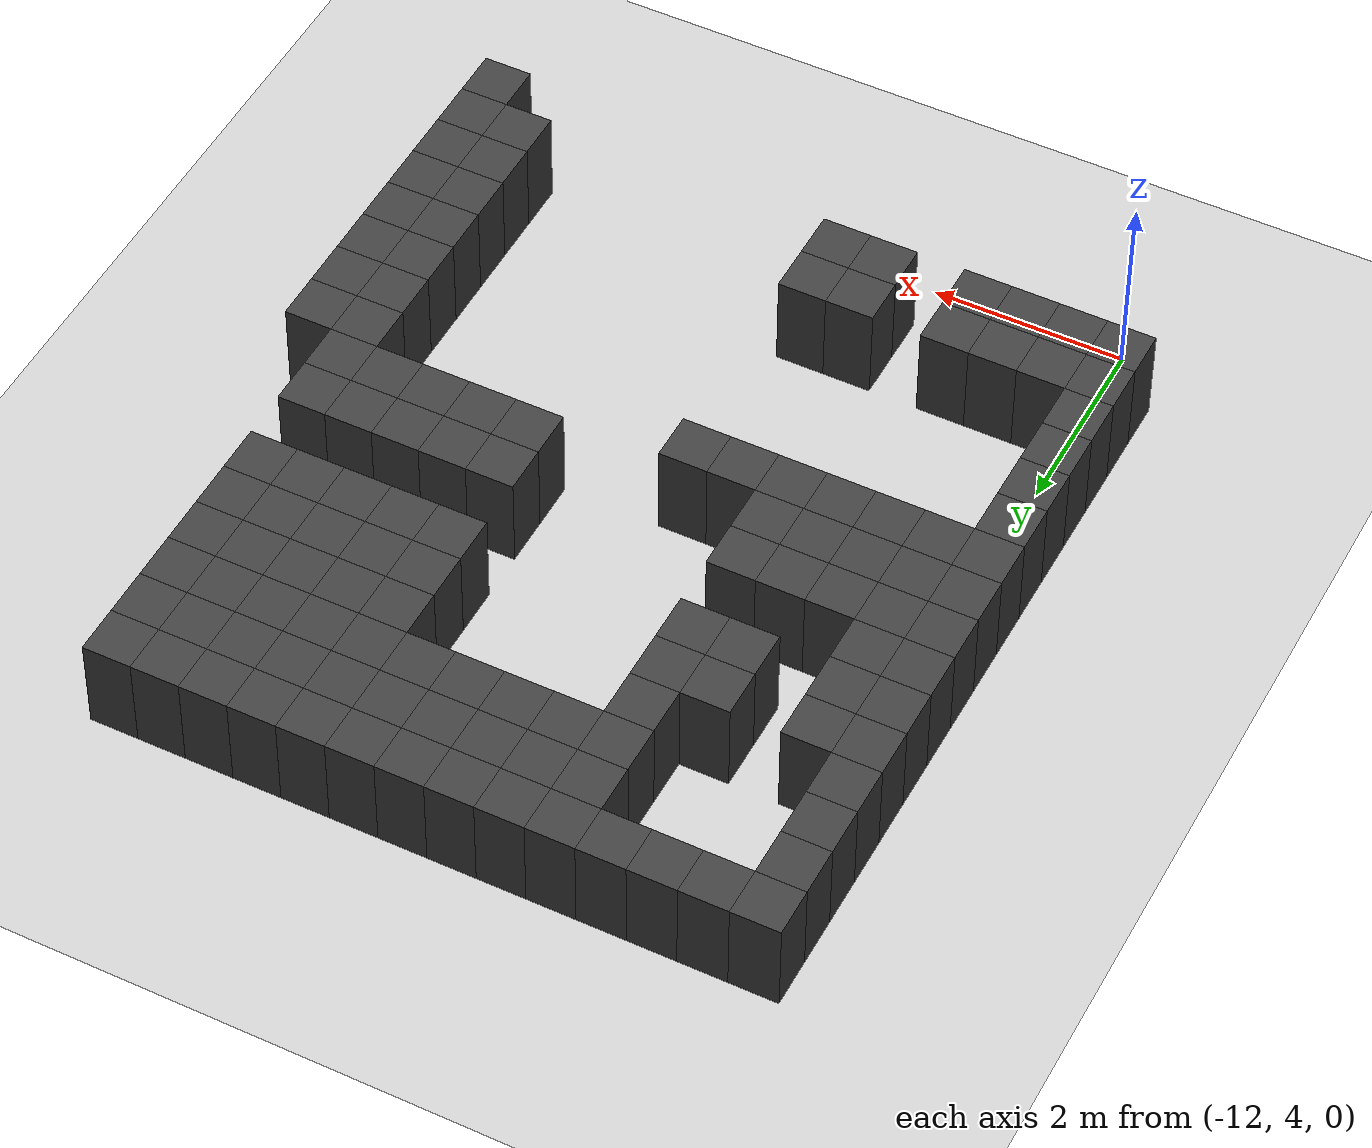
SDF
<sdf version="1.7">
 <world name="map_14510">
  <model name="ground_plane">
   <static>true</static>
   <link name="link">
    <collision name="collision">
     <geometry><plane><normal>0 0 1</normal><size>200 200</size></plane></geometry>
    </collision>
    <visual name="visual">
     <geometry><plane><normal>0 0 1</normal><size>200 200</size></plane></geometry>
     <material><ambient>0.8 0.8 0.8 1</ambient><diffuse>0.8 0.8 0.8 1</diffuse></material>
    </visual>
   </link>
  </model>
  <model name="maze_environment">
   <static>true</static>
   <link name="wall_0">
    <pose>-12.250 12.250 0.500 0 0 0</pose>
    <collision name="col"><geometry><box><size>0.5 0.5 1.0</size></box></geometry></collision>
    <visual name="vis">
     <geometry><box><size>0.5 0.5 1.0</size></box></geometry>
     <material><ambient>0.15 0.15 0.15 1</ambient><diffuse>0.25 0.25 0.25 1</diffuse></material>
    </visual>
   </link>
   <link name="wall_1">
    <pose>-11.750 12.250 0.500 0 0 0</pose>
    <collision name="col"><geometry><box><size>0.5 0.5 1.0</size></box></geometry></collision>
    <visual name="vis">
     <geometry><box><size>0.5 0.5 1.0</size></box></geometry>
     <material><ambient>0.15 0.15 0.15 1</ambient><diffuse>0.25 0.25 0.25 1</diffuse></material>
    </visual>
   </link>
   <link name="wall_2">
    <pose>-11.250 12.250 0.500 0 0 0</pose>
    <collision name="col"><geometry><box><size>0.5 0.5 1.0</size></box></geometry></collision>
    <visual name="vis">
     <geometry><box><size>0.5 0.5 1.0</size></box></geometry>
     <material><ambient>0.15 0.15 0.15 1</ambient><diffuse>0.25 0.25 0.25 1</diffuse></material>
    </visual>
   </link>
   <link name="wall_3">
    <pose>-10.750 12.250 0.500 0 0 0</pose>
    <collision name="col"><geometry><box><size>0.5 0.5 1.0</size></box></geometry></collision>
    <visual name="vis">
     <geometry><box><size>0.5 0.5 1.0</size></box></geometry>
     <material><ambient>0.15 0.15 0.15 1</ambient><diffuse>0.25 0.25 0.25 1</diffuse></material>
    </visual>
   </link>
   <link name="wall_4">
    <pose>-10.250 12.250 0.500 0 0 0</pose>
    <collision name="col"><geometry><box><size>0.5 0.5 1.0</size></box></geometry></collision>
    <visual name="vis">
     <geometry><box><size>0.5 0.5 1.0</size></box></geometry>
     <material><ambient>0.15 0.15 0.15 1</ambient><diffuse>0.25 0.25 0.25 1</diffuse></material>
    </visual>
   </link>
   <link name="wall_5">
    <pose>-9.750 12.250 0.500 0 0 0</pose>
    <collision name="col"><geometry><box><size>0.5 0.5 1.0</size></box></geometry></collision>
    <visual name="vis">
     <geometry><box><size>0.5 0.5 1.0</size></box></geometry>
     <material><ambient>0.15 0.15 0.15 1</ambient><diffuse>0.25 0.25 0.25 1</diffuse></material>
    </visual>
   </link>
   <link name="wall_6">
    <pose>-9.250 12.250 0.500 0 0 0</pose>
    <collision name="col"><geometry><box><size>0.5 0.5 1.0</size></box></geometry></collision>
    <visual name="vis">
     <geometry><box><size>0.5 0.5 1.0</size></box></geometry>
     <material><ambient>0.15 0.15 0.15 1</ambient><diffuse>0.25 0.25 0.25 1</diffuse></material>
    </visual>
   </link>
   <link name="wall_7">
    <pose>-8.750 12.250 0.500 0 0 0</pose>
    <collision name="col"><geometry><box><size>0.5 0.5 1.0</size></box></geometry></collision>
    <visual name="vis">
     <geometry><box><size>0.5 0.5 1.0</size></box></geometry>
     <material><ambient>0.15 0.15 0.15 1</ambient><diffuse>0.25 0.25 0.25 1</diffuse></material>
    </visual>
   </link>
   <link name="wall_8">
    <pose>-8.250 12.250 0.500 0 0 0</pose>
    <collision name="col"><geometry><box><size>0.5 0.5 1.0</size></box></geometry></collision>
    <visual name="vis">
     <geometry><box><size>0.5 0.5 1.0</size></box></geometry>
     <material><ambient>0.15 0.15 0.15 1</ambient><diffuse>0.25 0.25 0.25 1</diffuse></material>
    </visual>
   </link>
   <link name="wall_9">
    <pose>-7.750 12.250 0.500 0 0 0</pose>
    <collision name="col"><geometry><box><size>0.5 0.5 1.0</size></box></geometry></collision>
    <visual name="vis">
     <geometry><box><size>0.5 0.5 1.0</size></box></geometry>
     <material><ambient>0.15 0.15 0.15 1</ambient><diffuse>0.25 0.25 0.25 1</diffuse></material>
    </visual>
   </link>
   <link name="wall_10">
    <pose>-7.250 12.250 0.500 0 0 0</pose>
    <collision name="col"><geometry><box><size>0.5 0.5 1.0</size></box></geometry></collision>
    <visual name="vis">
     <geometry><box><size>0.5 0.5 1.0</size></box></geometry>
     <material><ambient>0.15 0.15 0.15 1</ambient><diffuse>0.25 0.25 0.25 1</diffuse></material>
    </visual>
   </link>
   <link name="wall_11">
    <pose>-6.750 12.250 0.500 0 0 0</pose>
    <collision name="col"><geometry><box><size>0.5 0.5 1.0</size></box></geometry></collision>
    <visual name="vis">
     <geometry><box><size>0.5 0.5 1.0</size></box></geometry>
     <material><ambient>0.15 0.15 0.15 1</ambient><diffuse>0.25 0.25 0.25 1</diffuse></material>
    </visual>
   </link>
   <link name="wall_12">
    <pose>-6.250 12.250 0.500 0 0 0</pose>
    <collision name="col"><geometry><box><size>0.5 0.5 1.0</size></box></geometry></collision>
    <visual name="vis">
     <geometry><box><size>0.5 0.5 1.0</size></box></geometry>
     <material><ambient>0.15 0.15 0.15 1</ambient><diffuse>0.25 0.25 0.25 1</diffuse></material>
    </visual>
   </link>
   <link name="wall_13">
    <pose>-5.750 12.250 0.500 0 0 0</pose>
    <collision name="col"><geometry><box><size>0.5 0.5 1.0</size></box></geometry></collision>
    <visual name="vis">
     <geometry><box><size>0.5 0.5 1.0</size></box></geometry>
     <material><ambient>0.15 0.15 0.15 1</ambient><diffuse>0.25 0.25 0.25 1</diffuse></material>
    </visual>
   </link>
   <link name="wall_50">
    <pose>-12.250 11.750 0.500 0 0 0</pose>
    <collision name="col"><geometry><box><size>0.5 0.5 1.0</size></box></geometry></collision>
    <visual name="vis">
     <geometry><box><size>0.5 0.5 1.0</size></box></geometry>
     <material><ambient>0.15 0.15 0.15 1</ambient><diffuse>0.25 0.25 0.25 1</diffuse></material>
    </visual>
   </link>
   <link name="wall_51">
    <pose>-10.250 11.750 0.500 0 0 0</pose>
    <collision name="col"><geometry><box><size>0.5 0.5 1.0</size></box></geometry></collision>
    <visual name="vis">
     <geometry><box><size>0.5 0.5 1.0</size></box></geometry>
     <material><ambient>0.15 0.15 0.15 1</ambient><diffuse>0.25 0.25 0.25 1</diffuse></material>
    </visual>
   </link>
   <link name="wall_52">
    <pose>-9.750 11.750 0.500 0 0 0</pose>
    <collision name="col"><geometry><box><size>0.5 0.5 1.0</size></box></geometry></collision>
    <visual name="vis">
     <geometry><box><size>0.5 0.5 1.0</size></box></geometry>
     <material><ambient>0.15 0.15 0.15 1</ambient><diffuse>0.25 0.25 0.25 1</diffuse></material>
    </visual>
   </link>
   <link name="wall_53">
    <pose>-9.250 11.750 0.500 0 0 0</pose>
    <collision name="col"><geometry><box><size>0.5 0.5 1.0</size></box></geometry></collision>
    <visual name="vis">
     <geometry><box><size>0.5 0.5 1.0</size></box></geometry>
     <material><ambient>0.15 0.15 0.15 1</ambient><diffuse>0.25 0.25 0.25 1</diffuse></material>
    </visual>
   </link>
   <link name="wall_54">
    <pose>-8.750 11.750 0.500 0 0 0</pose>
    <collision name="col"><geometry><box><size>0.5 0.5 1.0</size></box></geometry></collision>
    <visual name="vis">
     <geometry><box><size>0.5 0.5 1.0</size></box></geometry>
     <material><ambient>0.15 0.15 0.15 1</ambient><diffuse>0.25 0.25 0.25 1</diffuse></material>
    </visual>
   </link>
   <link name="wall_55">
    <pose>-8.250 11.750 0.500 0 0 0</pose>
    <collision name="col"><geometry><box><size>0.5 0.5 1.0</size></box></geometry></collision>
    <visual name="vis">
     <geometry><box><size>0.5 0.5 1.0</size></box></geometry>
     <material><ambient>0.15 0.15 0.15 1</ambient><diffuse>0.25 0.25 0.25 1</diffuse></material>
    </visual>
   </link>
   <link name="wall_56">
    <pose>-7.750 11.750 0.500 0 0 0</pose>
    <collision name="col"><geometry><box><size>0.5 0.5 1.0</size></box></geometry></collision>
    <visual name="vis">
     <geometry><box><size>0.5 0.5 1.0</size></box></geometry>
     <material><ambient>0.15 0.15 0.15 1</ambient><diffuse>0.25 0.25 0.25 1</diffuse></material>
    </visual>
   </link>
   <link name="wall_57">
    <pose>-7.250 11.750 0.500 0 0 0</pose>
    <collision name="col"><geometry><box><size>0.5 0.5 1.0</size></box></geometry></collision>
    <visual name="vis">
     <geometry><box><size>0.5 0.5 1.0</size></box></geometry>
     <material><ambient>0.15 0.15 0.15 1</ambient><diffuse>0.25 0.25 0.25 1</diffuse></material>
    </visual>
   </link>
   <link name="wall_58">
    <pose>-6.750 11.750 0.500 0 0 0</pose>
    <collision name="col"><geometry><box><size>0.5 0.5 1.0</size></box></geometry></collision>
    <visual name="vis">
     <geometry><box><size>0.5 0.5 1.0</size></box></geometry>
     <material><ambient>0.15 0.15 0.15 1</ambient><diffuse>0.25 0.25 0.25 1</diffuse></material>
    </visual>
   </link>
   <link name="wall_59">
    <pose>-6.250 11.750 0.500 0 0 0</pose>
    <collision name="col"><geometry><box><size>0.5 0.5 1.0</size></box></geometry></collision>
    <visual name="vis">
     <geometry><box><size>0.5 0.5 1.0</size></box></geometry>
     <material><ambient>0.15 0.15 0.15 1</ambient><diffuse>0.25 0.25 0.25 1</diffuse></material>
    </visual>
   </link>
   <link name="wall_60">
    <pose>-5.750 11.750 0.500 0 0 0</pose>
    <collision name="col"><geometry><box><size>0.5 0.5 1.0</size></box></geometry></collision>
    <visual name="vis">
     <geometry><box><size>0.5 0.5 1.0</size></box></geometry>
     <material><ambient>0.15 0.15 0.15 1</ambient><diffuse>0.25 0.25 0.25 1</diffuse></material>
    </visual>
   </link>
   <link name="wall_97">
    <pose>-12.250 11.250 0.500 0 0 0</pose>
    <collision name="col"><geometry><box><size>0.5 0.5 1.0</size></box></geometry></collision>
    <visual name="vis">
     <geometry><box><size>0.5 0.5 1.0</size></box></geometry>
     <material><ambient>0.15 0.15 0.15 1</ambient><diffuse>0.25 0.25 0.25 1</diffuse></material>
    </visual>
   </link>
   <link name="wall_98">
    <pose>-10.250 11.250 0.500 0 0 0</pose>
    <collision name="col"><geometry><box><size>0.5 0.5 1.0</size></box></geometry></collision>
    <visual name="vis">
     <geometry><box><size>0.5 0.5 1.0</size></box></geometry>
     <material><ambient>0.15 0.15 0.15 1</ambient><diffuse>0.25 0.25 0.25 1</diffuse></material>
    </visual>
   </link>
   <link name="wall_99">
    <pose>-9.750 11.250 0.500 0 0 0</pose>
    <collision name="col"><geometry><box><size>0.5 0.5 1.0</size></box></geometry></collision>
    <visual name="vis">
     <geometry><box><size>0.5 0.5 1.0</size></box></geometry>
     <material><ambient>0.15 0.15 0.15 1</ambient><diffuse>0.25 0.25 0.25 1</diffuse></material>
    </visual>
   </link>
   <link name="wall_100">
    <pose>-9.250 11.250 0.500 0 0 0</pose>
    <collision name="col"><geometry><box><size>0.5 0.5 1.0</size></box></geometry></collision>
    <visual name="vis">
     <geometry><box><size>0.5 0.5 1.0</size></box></geometry>
     <material><ambient>0.15 0.15 0.15 1</ambient><diffuse>0.25 0.25 0.25 1</diffuse></material>
    </visual>
   </link>
   <link name="wall_101">
    <pose>-8.750 11.250 0.500 0 0 0</pose>
    <collision name="col"><geometry><box><size>0.5 0.5 1.0</size></box></geometry></collision>
    <visual name="vis">
     <geometry><box><size>0.5 0.5 1.0</size></box></geometry>
     <material><ambient>0.15 0.15 0.15 1</ambient><diffuse>0.25 0.25 0.25 1</diffuse></material>
    </visual>
   </link>
   <link name="wall_102">
    <pose>-8.250 11.250 0.500 0 0 0</pose>
    <collision name="col"><geometry><box><size>0.5 0.5 1.0</size></box></geometry></collision>
    <visual name="vis">
     <geometry><box><size>0.5 0.5 1.0</size></box></geometry>
     <material><ambient>0.15 0.15 0.15 1</ambient><diffuse>0.25 0.25 0.25 1</diffuse></material>
    </visual>
   </link>
   <link name="wall_103">
    <pose>-7.750 11.250 0.500 0 0 0</pose>
    <collision name="col"><geometry><box><size>0.5 0.5 1.0</size></box></geometry></collision>
    <visual name="vis">
     <geometry><box><size>0.5 0.5 1.0</size></box></geometry>
     <material><ambient>0.15 0.15 0.15 1</ambient><diffuse>0.25 0.25 0.25 1</diffuse></material>
    </visual>
   </link>
   <link name="wall_104">
    <pose>-7.250 11.250 0.500 0 0 0</pose>
    <collision name="col"><geometry><box><size>0.5 0.5 1.0</size></box></geometry></collision>
    <visual name="vis">
     <geometry><box><size>0.5 0.5 1.0</size></box></geometry>
     <material><ambient>0.15 0.15 0.15 1</ambient><diffuse>0.25 0.25 0.25 1</diffuse></material>
    </visual>
   </link>
   <link name="wall_105">
    <pose>-6.750 11.250 0.500 0 0 0</pose>
    <collision name="col"><geometry><box><size>0.5 0.5 1.0</size></box></geometry></collision>
    <visual name="vis">
     <geometry><box><size>0.5 0.5 1.0</size></box></geometry>
     <material><ambient>0.15 0.15 0.15 1</ambient><diffuse>0.25 0.25 0.25 1</diffuse></material>
    </visual>
   </link>
   <link name="wall_106">
    <pose>-6.250 11.250 0.500 0 0 0</pose>
    <collision name="col"><geometry><box><size>0.5 0.5 1.0</size></box></geometry></collision>
    <visual name="vis">
     <geometry><box><size>0.5 0.5 1.0</size></box></geometry>
     <material><ambient>0.15 0.15 0.15 1</ambient><diffuse>0.25 0.25 0.25 1</diffuse></material>
    </visual>
   </link>
   <link name="wall_107">
    <pose>-5.750 11.250 0.500 0 0 0</pose>
    <collision name="col"><geometry><box><size>0.5 0.5 1.0</size></box></geometry></collision>
    <visual name="vis">
     <geometry><box><size>0.5 0.5 1.0</size></box></geometry>
     <material><ambient>0.15 0.15 0.15 1</ambient><diffuse>0.25 0.25 0.25 1</diffuse></material>
    </visual>
   </link>
   <link name="wall_144">
    <pose>-12.250 10.750 0.500 0 0 0</pose>
    <collision name="col"><geometry><box><size>0.5 0.5 1.0</size></box></geometry></collision>
    <visual name="vis">
     <geometry><box><size>0.5 0.5 1.0</size></box></geometry>
     <material><ambient>0.15 0.15 0.15 1</ambient><diffuse>0.25 0.25 0.25 1</diffuse></material>
    </visual>
   </link>
   <link name="wall_145">
    <pose>-10.250 10.750 0.500 0 0 0</pose>
    <collision name="col"><geometry><box><size>0.5 0.5 1.0</size></box></geometry></collision>
    <visual name="vis">
     <geometry><box><size>0.5 0.5 1.0</size></box></geometry>
     <material><ambient>0.15 0.15 0.15 1</ambient><diffuse>0.25 0.25 0.25 1</diffuse></material>
    </visual>
   </link>
   <link name="wall_146">
    <pose>-7.750 10.750 0.500 0 0 0</pose>
    <collision name="col"><geometry><box><size>0.5 0.5 1.0</size></box></geometry></collision>
    <visual name="vis">
     <geometry><box><size>0.5 0.5 1.0</size></box></geometry>
     <material><ambient>0.15 0.15 0.15 1</ambient><diffuse>0.25 0.25 0.25 1</diffuse></material>
    </visual>
   </link>
   <link name="wall_147">
    <pose>-7.250 10.750 0.500 0 0 0</pose>
    <collision name="col"><geometry><box><size>0.5 0.5 1.0</size></box></geometry></collision>
    <visual name="vis">
     <geometry><box><size>0.5 0.5 1.0</size></box></geometry>
     <material><ambient>0.15 0.15 0.15 1</ambient><diffuse>0.25 0.25 0.25 1</diffuse></material>
    </visual>
   </link>
   <link name="wall_148">
    <pose>-6.750 10.750 0.500 0 0 0</pose>
    <collision name="col"><geometry><box><size>0.5 0.5 1.0</size></box></geometry></collision>
    <visual name="vis">
     <geometry><box><size>0.5 0.5 1.0</size></box></geometry>
     <material><ambient>0.15 0.15 0.15 1</ambient><diffuse>0.25 0.25 0.25 1</diffuse></material>
    </visual>
   </link>
   <link name="wall_149">
    <pose>-6.250 10.750 0.500 0 0 0</pose>
    <collision name="col"><geometry><box><size>0.5 0.5 1.0</size></box></geometry></collision>
    <visual name="vis">
     <geometry><box><size>0.5 0.5 1.0</size></box></geometry>
     <material><ambient>0.15 0.15 0.15 1</ambient><diffuse>0.25 0.25 0.25 1</diffuse></material>
    </visual>
   </link>
   <link name="wall_150">
    <pose>-5.750 10.750 0.500 0 0 0</pose>
    <collision name="col"><geometry><box><size>0.5 0.5 1.0</size></box></geometry></collision>
    <visual name="vis">
     <geometry><box><size>0.5 0.5 1.0</size></box></geometry>
     <material><ambient>0.15 0.15 0.15 1</ambient><diffuse>0.25 0.25 0.25 1</diffuse></material>
    </visual>
   </link>
   <link name="wall_181">
    <pose>-12.250 10.250 0.500 0 0 0</pose>
    <collision name="col"><geometry><box><size>0.5 0.5 1.0</size></box></geometry></collision>
    <visual name="vis">
     <geometry><box><size>0.5 0.5 1.0</size></box></geometry>
     <material><ambient>0.15 0.15 0.15 1</ambient><diffuse>0.25 0.25 0.25 1</diffuse></material>
    </visual>
   </link>
   <link name="wall_182">
    <pose>-11.750 10.250 0.500 0 0 0</pose>
    <collision name="col"><geometry><box><size>0.5 0.5 1.0</size></box></geometry></collision>
    <visual name="vis">
     <geometry><box><size>0.5 0.5 1.0</size></box></geometry>
     <material><ambient>0.15 0.15 0.15 1</ambient><diffuse>0.25 0.25 0.25 1</diffuse></material>
    </visual>
   </link>
   <link name="wall_183">
    <pose>-10.750 10.250 0.500 0 0 0</pose>
    <collision name="col"><geometry><box><size>0.5 0.5 1.0</size></box></geometry></collision>
    <visual name="vis">
     <geometry><box><size>0.5 0.5 1.0</size></box></geometry>
     <material><ambient>0.15 0.15 0.15 1</ambient><diffuse>0.25 0.25 0.25 1</diffuse></material>
    </visual>
   </link>
   <link name="wall_184">
    <pose>-10.250 10.250 0.500 0 0 0</pose>
    <collision name="col"><geometry><box><size>0.5 0.5 1.0</size></box></geometry></collision>
    <visual name="vis">
     <geometry><box><size>0.5 0.5 1.0</size></box></geometry>
     <material><ambient>0.15 0.15 0.15 1</ambient><diffuse>0.25 0.25 0.25 1</diffuse></material>
    </visual>
   </link>
   <link name="wall_185">
    <pose>-7.750 10.250 0.500 0 0 0</pose>
    <collision name="col"><geometry><box><size>0.5 0.5 1.0</size></box></geometry></collision>
    <visual name="vis">
     <geometry><box><size>0.5 0.5 1.0</size></box></geometry>
     <material><ambient>0.15 0.15 0.15 1</ambient><diffuse>0.25 0.25 0.25 1</diffuse></material>
    </visual>
   </link>
   <link name="wall_186">
    <pose>-7.250 10.250 0.500 0 0 0</pose>
    <collision name="col"><geometry><box><size>0.5 0.5 1.0</size></box></geometry></collision>
    <visual name="vis">
     <geometry><box><size>0.5 0.5 1.0</size></box></geometry>
     <material><ambient>0.15 0.15 0.15 1</ambient><diffuse>0.25 0.25 0.25 1</diffuse></material>
    </visual>
   </link>
   <link name="wall_187">
    <pose>-6.750 10.250 0.500 0 0 0</pose>
    <collision name="col"><geometry><box><size>0.5 0.5 1.0</size></box></geometry></collision>
    <visual name="vis">
     <geometry><box><size>0.5 0.5 1.0</size></box></geometry>
     <material><ambient>0.15 0.15 0.15 1</ambient><diffuse>0.25 0.25 0.25 1</diffuse></material>
    </visual>
   </link>
   <link name="wall_188">
    <pose>-6.250 10.250 0.500 0 0 0</pose>
    <collision name="col"><geometry><box><size>0.5 0.5 1.0</size></box></geometry></collision>
    <visual name="vis">
     <geometry><box><size>0.5 0.5 1.0</size></box></geometry>
     <material><ambient>0.15 0.15 0.15 1</ambient><diffuse>0.25 0.25 0.25 1</diffuse></material>
    </visual>
   </link>
   <link name="wall_189">
    <pose>-5.750 10.250 0.500 0 0 0</pose>
    <collision name="col"><geometry><box><size>0.5 0.5 1.0</size></box></geometry></collision>
    <visual name="vis">
     <geometry><box><size>0.5 0.5 1.0</size></box></geometry>
     <material><ambient>0.15 0.15 0.15 1</ambient><diffuse>0.25 0.25 0.25 1</diffuse></material>
    </visual>
   </link>
   <link name="wall_220">
    <pose>-12.250 9.750 0.500 0 0 0</pose>
    <collision name="col"><geometry><box><size>0.5 0.5 1.0</size></box></geometry></collision>
    <visual name="vis">
     <geometry><box><size>0.5 0.5 1.0</size></box></geometry>
     <material><ambient>0.15 0.15 0.15 1</ambient><diffuse>0.25 0.25 0.25 1</diffuse></material>
    </visual>
   </link>
   <link name="wall_221">
    <pose>-11.750 9.750 0.500 0 0 0</pose>
    <collision name="col"><geometry><box><size>0.5 0.5 1.0</size></box></geometry></collision>
    <visual name="vis">
     <geometry><box><size>0.5 0.5 1.0</size></box></geometry>
     <material><ambient>0.15 0.15 0.15 1</ambient><diffuse>0.25 0.25 0.25 1</diffuse></material>
    </visual>
   </link>
   <link name="wall_222">
    <pose>-10.750 9.750 0.500 0 0 0</pose>
    <collision name="col"><geometry><box><size>0.5 0.5 1.0</size></box></geometry></collision>
    <visual name="vis">
     <geometry><box><size>0.5 0.5 1.0</size></box></geometry>
     <material><ambient>0.15 0.15 0.15 1</ambient><diffuse>0.25 0.25 0.25 1</diffuse></material>
    </visual>
   </link>
   <link name="wall_223">
    <pose>-10.250 9.750 0.500 0 0 0</pose>
    <collision name="col"><geometry><box><size>0.5 0.5 1.0</size></box></geometry></collision>
    <visual name="vis">
     <geometry><box><size>0.5 0.5 1.0</size></box></geometry>
     <material><ambient>0.15 0.15 0.15 1</ambient><diffuse>0.25 0.25 0.25 1</diffuse></material>
    </visual>
   </link>
   <link name="wall_224">
    <pose>-7.750 9.750 0.500 0 0 0</pose>
    <collision name="col"><geometry><box><size>0.5 0.5 1.0</size></box></geometry></collision>
    <visual name="vis">
     <geometry><box><size>0.5 0.5 1.0</size></box></geometry>
     <material><ambient>0.15 0.15 0.15 1</ambient><diffuse>0.25 0.25 0.25 1</diffuse></material>
    </visual>
   </link>
   <link name="wall_225">
    <pose>-7.250 9.750 0.500 0 0 0</pose>
    <collision name="col"><geometry><box><size>0.5 0.5 1.0</size></box></geometry></collision>
    <visual name="vis">
     <geometry><box><size>0.5 0.5 1.0</size></box></geometry>
     <material><ambient>0.15 0.15 0.15 1</ambient><diffuse>0.25 0.25 0.25 1</diffuse></material>
    </visual>
   </link>
   <link name="wall_226">
    <pose>-6.750 9.750 0.500 0 0 0</pose>
    <collision name="col"><geometry><box><size>0.5 0.5 1.0</size></box></geometry></collision>
    <visual name="vis">
     <geometry><box><size>0.5 0.5 1.0</size></box></geometry>
     <material><ambient>0.15 0.15 0.15 1</ambient><diffuse>0.25 0.25 0.25 1</diffuse></material>
    </visual>
   </link>
   <link name="wall_227">
    <pose>-6.250 9.750 0.500 0 0 0</pose>
    <collision name="col"><geometry><box><size>0.5 0.5 1.0</size></box></geometry></collision>
    <visual name="vis">
     <geometry><box><size>0.5 0.5 1.0</size></box></geometry>
     <material><ambient>0.15 0.15 0.15 1</ambient><diffuse>0.25 0.25 0.25 1</diffuse></material>
    </visual>
   </link>
   <link name="wall_228">
    <pose>-5.750 9.750 0.500 0 0 0</pose>
    <collision name="col"><geometry><box><size>0.5 0.5 1.0</size></box></geometry></collision>
    <visual name="vis">
     <geometry><box><size>0.5 0.5 1.0</size></box></geometry>
     <material><ambient>0.15 0.15 0.15 1</ambient><diffuse>0.25 0.25 0.25 1</diffuse></material>
    </visual>
   </link>
   <link name="wall_252">
    <pose>-12.250 9.250 0.500 0 0 0</pose>
    <collision name="col"><geometry><box><size>0.5 0.5 1.0</size></box></geometry></collision>
    <visual name="vis">
     <geometry><box><size>0.5 0.5 1.0</size></box></geometry>
     <material><ambient>0.15 0.15 0.15 1</ambient><diffuse>0.25 0.25 0.25 1</diffuse></material>
    </visual>
   </link>
   <link name="wall_253">
    <pose>-11.750 9.250 0.500 0 0 0</pose>
    <collision name="col"><geometry><box><size>0.5 0.5 1.0</size></box></geometry></collision>
    <visual name="vis">
     <geometry><box><size>0.5 0.5 1.0</size></box></geometry>
     <material><ambient>0.15 0.15 0.15 1</ambient><diffuse>0.25 0.25 0.25 1</diffuse></material>
    </visual>
   </link>
   <link name="wall_273">
    <pose>-12.250 8.750 0.500 0 0 0</pose>
    <collision name="col"><geometry><box><size>0.5 0.5 1.0</size></box></geometry></collision>
    <visual name="vis">
     <geometry><box><size>0.5 0.5 1.0</size></box></geometry>
     <material><ambient>0.15 0.15 0.15 1</ambient><diffuse>0.25 0.25 0.25 1</diffuse></material>
    </visual>
   </link>
   <link name="wall_274">
    <pose>-11.750 8.750 0.500 0 0 0</pose>
    <collision name="col"><geometry><box><size>0.5 0.5 1.0</size></box></geometry></collision>
    <visual name="vis">
     <geometry><box><size>0.5 0.5 1.0</size></box></geometry>
     <material><ambient>0.15 0.15 0.15 1</ambient><diffuse>0.25 0.25 0.25 1</diffuse></material>
    </visual>
   </link>
   <link name="wall_275">
    <pose>-11.250 8.750 0.500 0 0 0</pose>
    <collision name="col"><geometry><box><size>0.5 0.5 1.0</size></box></geometry></collision>
    <visual name="vis">
     <geometry><box><size>0.5 0.5 1.0</size></box></geometry>
     <material><ambient>0.15 0.15 0.15 1</ambient><diffuse>0.25 0.25 0.25 1</diffuse></material>
    </visual>
   </link>
   <link name="wall_276">
    <pose>-10.750 8.750 0.500 0 0 0</pose>
    <collision name="col"><geometry><box><size>0.5 0.5 1.0</size></box></geometry></collision>
    <visual name="vis">
     <geometry><box><size>0.5 0.5 1.0</size></box></geometry>
     <material><ambient>0.15 0.15 0.15 1</ambient><diffuse>0.25 0.25 0.25 1</diffuse></material>
    </visual>
   </link>
   <link name="wall_277">
    <pose>-10.250 8.750 0.500 0 0 0</pose>
    <collision name="col"><geometry><box><size>0.5 0.5 1.0</size></box></geometry></collision>
    <visual name="vis">
     <geometry><box><size>0.5 0.5 1.0</size></box></geometry>
     <material><ambient>0.15 0.15 0.15 1</ambient><diffuse>0.25 0.25 0.25 1</diffuse></material>
    </visual>
   </link>
   <link name="wall_278">
    <pose>-7.750 8.750 0.500 0 0 0</pose>
    <collision name="col"><geometry><box><size>0.5 0.5 1.0</size></box></geometry></collision>
    <visual name="vis">
     <geometry><box><size>0.5 0.5 1.0</size></box></geometry>
     <material><ambient>0.15 0.15 0.15 1</ambient><diffuse>0.25 0.25 0.25 1</diffuse></material>
    </visual>
   </link>
   <link name="wall_279">
    <pose>-7.250 8.750 0.500 0 0 0</pose>
    <collision name="col"><geometry><box><size>0.5 0.5 1.0</size></box></geometry></collision>
    <visual name="vis">
     <geometry><box><size>0.5 0.5 1.0</size></box></geometry>
     <material><ambient>0.15 0.15 0.15 1</ambient><diffuse>0.25 0.25 0.25 1</diffuse></material>
    </visual>
   </link>
   <link name="wall_280">
    <pose>-6.750 8.750 0.500 0 0 0</pose>
    <collision name="col"><geometry><box><size>0.5 0.5 1.0</size></box></geometry></collision>
    <visual name="vis">
     <geometry><box><size>0.5 0.5 1.0</size></box></geometry>
     <material><ambient>0.15 0.15 0.15 1</ambient><diffuse>0.25 0.25 0.25 1</diffuse></material>
    </visual>
   </link>
   <link name="wall_281">
    <pose>-6.250 8.750 0.500 0 0 0</pose>
    <collision name="col"><geometry><box><size>0.5 0.5 1.0</size></box></geometry></collision>
    <visual name="vis">
     <geometry><box><size>0.5 0.5 1.0</size></box></geometry>
     <material><ambient>0.15 0.15 0.15 1</ambient><diffuse>0.25 0.25 0.25 1</diffuse></material>
    </visual>
   </link>
   <link name="wall_282">
    <pose>-5.750 8.750 0.500 0 0 0</pose>
    <collision name="col"><geometry><box><size>0.5 0.5 1.0</size></box></geometry></collision>
    <visual name="vis">
     <geometry><box><size>0.5 0.5 1.0</size></box></geometry>
     <material><ambient>0.15 0.15 0.15 1</ambient><diffuse>0.25 0.25 0.25 1</diffuse></material>
    </visual>
   </link>
   <link name="wall_306">
    <pose>-12.250 8.250 0.500 0 0 0</pose>
    <collision name="col"><geometry><box><size>0.5 0.5 1.0</size></box></geometry></collision>
    <visual name="vis">
     <geometry><box><size>0.5 0.5 1.0</size></box></geometry>
     <material><ambient>0.15 0.15 0.15 1</ambient><diffuse>0.25 0.25 0.25 1</diffuse></material>
    </visual>
   </link>
   <link name="wall_307">
    <pose>-11.750 8.250 0.500 0 0 0</pose>
    <collision name="col"><geometry><box><size>0.5 0.5 1.0</size></box></geometry></collision>
    <visual name="vis">
     <geometry><box><size>0.5 0.5 1.0</size></box></geometry>
     <material><ambient>0.15 0.15 0.15 1</ambient><diffuse>0.25 0.25 0.25 1</diffuse></material>
    </visual>
   </link>
   <link name="wall_308">
    <pose>-11.250 8.250 0.500 0 0 0</pose>
    <collision name="col"><geometry><box><size>0.5 0.5 1.0</size></box></geometry></collision>
    <visual name="vis">
     <geometry><box><size>0.5 0.5 1.0</size></box></geometry>
     <material><ambient>0.15 0.15 0.15 1</ambient><diffuse>0.25 0.25 0.25 1</diffuse></material>
    </visual>
   </link>
   <link name="wall_309">
    <pose>-10.750 8.250 0.500 0 0 0</pose>
    <collision name="col"><geometry><box><size>0.5 0.5 1.0</size></box></geometry></collision>
    <visual name="vis">
     <geometry><box><size>0.5 0.5 1.0</size></box></geometry>
     <material><ambient>0.15 0.15 0.15 1</ambient><diffuse>0.25 0.25 0.25 1</diffuse></material>
    </visual>
   </link>
   <link name="wall_310">
    <pose>-10.250 8.250 0.500 0 0 0</pose>
    <collision name="col"><geometry><box><size>0.5 0.5 1.0</size></box></geometry></collision>
    <visual name="vis">
     <geometry><box><size>0.5 0.5 1.0</size></box></geometry>
     <material><ambient>0.15 0.15 0.15 1</ambient><diffuse>0.25 0.25 0.25 1</diffuse></material>
    </visual>
   </link>
   <link name="wall_311">
    <pose>-7.750 8.250 0.500 0 0 0</pose>
    <collision name="col"><geometry><box><size>0.5 0.5 1.0</size></box></geometry></collision>
    <visual name="vis">
     <geometry><box><size>0.5 0.5 1.0</size></box></geometry>
     <material><ambient>0.15 0.15 0.15 1</ambient><diffuse>0.25 0.25 0.25 1</diffuse></material>
    </visual>
   </link>
   <link name="wall_312">
    <pose>-7.250 8.250 0.500 0 0 0</pose>
    <collision name="col"><geometry><box><size>0.5 0.5 1.0</size></box></geometry></collision>
    <visual name="vis">
     <geometry><box><size>0.5 0.5 1.0</size></box></geometry>
     <material><ambient>0.15 0.15 0.15 1</ambient><diffuse>0.25 0.25 0.25 1</diffuse></material>
    </visual>
   </link>
   <link name="wall_313">
    <pose>-6.750 8.250 0.500 0 0 0</pose>
    <collision name="col"><geometry><box><size>0.5 0.5 1.0</size></box></geometry></collision>
    <visual name="vis">
     <geometry><box><size>0.5 0.5 1.0</size></box></geometry>
     <material><ambient>0.15 0.15 0.15 1</ambient><diffuse>0.25 0.25 0.25 1</diffuse></material>
    </visual>
   </link>
   <link name="wall_314">
    <pose>-6.250 8.250 0.500 0 0 0</pose>
    <collision name="col"><geometry><box><size>0.5 0.5 1.0</size></box></geometry></collision>
    <visual name="vis">
     <geometry><box><size>0.5 0.5 1.0</size></box></geometry>
     <material><ambient>0.15 0.15 0.15 1</ambient><diffuse>0.25 0.25 0.25 1</diffuse></material>
    </visual>
   </link>
   <link name="wall_315">
    <pose>-5.750 8.250 0.500 0 0 0</pose>
    <collision name="col"><geometry><box><size>0.5 0.5 1.0</size></box></geometry></collision>
    <visual name="vis">
     <geometry><box><size>0.5 0.5 1.0</size></box></geometry>
     <material><ambient>0.15 0.15 0.15 1</ambient><diffuse>0.25 0.25 0.25 1</diffuse></material>
    </visual>
   </link>
   <link name="wall_339">
    <pose>-12.250 7.750 0.500 0 0 0</pose>
    <collision name="col"><geometry><box><size>0.5 0.5 1.0</size></box></geometry></collision>
    <visual name="vis">
     <geometry><box><size>0.5 0.5 1.0</size></box></geometry>
     <material><ambient>0.15 0.15 0.15 1</ambient><diffuse>0.25 0.25 0.25 1</diffuse></material>
    </visual>
   </link>
   <link name="wall_340">
    <pose>-11.750 7.750 0.500 0 0 0</pose>
    <collision name="col"><geometry><box><size>0.5 0.5 1.0</size></box></geometry></collision>
    <visual name="vis">
     <geometry><box><size>0.5 0.5 1.0</size></box></geometry>
     <material><ambient>0.15 0.15 0.15 1</ambient><diffuse>0.25 0.25 0.25 1</diffuse></material>
    </visual>
   </link>
   <link name="wall_341">
    <pose>-11.250 7.750 0.500 0 0 0</pose>
    <collision name="col"><geometry><box><size>0.5 0.5 1.0</size></box></geometry></collision>
    <visual name="vis">
     <geometry><box><size>0.5 0.5 1.0</size></box></geometry>
     <material><ambient>0.15 0.15 0.15 1</ambient><diffuse>0.25 0.25 0.25 1</diffuse></material>
    </visual>
   </link>
   <link name="wall_342">
    <pose>-10.750 7.750 0.500 0 0 0</pose>
    <collision name="col"><geometry><box><size>0.5 0.5 1.0</size></box></geometry></collision>
    <visual name="vis">
     <geometry><box><size>0.5 0.5 1.0</size></box></geometry>
     <material><ambient>0.15 0.15 0.15 1</ambient><diffuse>0.25 0.25 0.25 1</diffuse></material>
    </visual>
   </link>
   <link name="wall_343">
    <pose>-10.250 7.750 0.500 0 0 0</pose>
    <collision name="col"><geometry><box><size>0.5 0.5 1.0</size></box></geometry></collision>
    <visual name="vis">
     <geometry><box><size>0.5 0.5 1.0</size></box></geometry>
     <material><ambient>0.15 0.15 0.15 1</ambient><diffuse>0.25 0.25 0.25 1</diffuse></material>
    </visual>
   </link>
   <link name="wall_344">
    <pose>-9.750 7.750 0.500 0 0 0</pose>
    <collision name="col"><geometry><box><size>0.5 0.5 1.0</size></box></geometry></collision>
    <visual name="vis">
     <geometry><box><size>0.5 0.5 1.0</size></box></geometry>
     <material><ambient>0.15 0.15 0.15 1</ambient><diffuse>0.25 0.25 0.25 1</diffuse></material>
    </visual>
   </link>
   <link name="wall_345">
    <pose>-9.250 7.750 0.500 0 0 0</pose>
    <collision name="col"><geometry><box><size>0.5 0.5 1.0</size></box></geometry></collision>
    <visual name="vis">
     <geometry><box><size>0.5 0.5 1.0</size></box></geometry>
     <material><ambient>0.15 0.15 0.15 1</ambient><diffuse>0.25 0.25 0.25 1</diffuse></material>
    </visual>
   </link>
   <link name="wall_346">
    <pose>-5.750 7.750 0.500 0 0 0</pose>
    <collision name="col"><geometry><box><size>0.5 0.5 1.0</size></box></geometry></collision>
    <visual name="vis">
     <geometry><box><size>0.5 0.5 1.0</size></box></geometry>
     <material><ambient>0.15 0.15 0.15 1</ambient><diffuse>0.25 0.25 0.25 1</diffuse></material>
    </visual>
   </link>
   <link name="wall_347">
    <pose>-5.250 7.750 0.500 0 0 0</pose>
    <collision name="col"><geometry><box><size>0.5 0.5 1.0</size></box></geometry></collision>
    <visual name="vis">
     <geometry><box><size>0.5 0.5 1.0</size></box></geometry>
     <material><ambient>0.15 0.15 0.15 1</ambient><diffuse>0.25 0.25 0.25 1</diffuse></material>
    </visual>
   </link>
   <link name="wall_365">
    <pose>-12.250 7.250 0.500 0 0 0</pose>
    <collision name="col"><geometry><box><size>0.5 0.5 1.0</size></box></geometry></collision>
    <visual name="vis">
     <geometry><box><size>0.5 0.5 1.0</size></box></geometry>
     <material><ambient>0.15 0.15 0.15 1</ambient><diffuse>0.25 0.25 0.25 1</diffuse></material>
    </visual>
   </link>
   <link name="wall_366">
    <pose>-5.750 7.250 0.500 0 0 0</pose>
    <collision name="col"><geometry><box><size>0.5 0.5 1.0</size></box></geometry></collision>
    <visual name="vis">
     <geometry><box><size>0.5 0.5 1.0</size></box></geometry>
     <material><ambient>0.15 0.15 0.15 1</ambient><diffuse>0.25 0.25 0.25 1</diffuse></material>
    </visual>
   </link>
   <link name="wall_367">
    <pose>-5.250 7.250 0.500 0 0 0</pose>
    <collision name="col"><geometry><box><size>0.5 0.5 1.0</size></box></geometry></collision>
    <visual name="vis">
     <geometry><box><size>0.5 0.5 1.0</size></box></geometry>
     <material><ambient>0.15 0.15 0.15 1</ambient><diffuse>0.25 0.25 0.25 1</diffuse></material>
    </visual>
   </link>
   <link name="wall_390">
    <pose>-12.250 6.750 0.500 0 0 0</pose>
    <collision name="col"><geometry><box><size>0.5 0.5 1.0</size></box></geometry></collision>
    <visual name="vis">
     <geometry><box><size>0.5 0.5 1.0</size></box></geometry>
     <material><ambient>0.15 0.15 0.15 1</ambient><diffuse>0.25 0.25 0.25 1</diffuse></material>
    </visual>
   </link>
   <link name="wall_391">
    <pose>-5.750 6.750 0.500 0 0 0</pose>
    <collision name="col"><geometry><box><size>0.5 0.5 1.0</size></box></geometry></collision>
    <visual name="vis">
     <geometry><box><size>0.5 0.5 1.0</size></box></geometry>
     <material><ambient>0.15 0.15 0.15 1</ambient><diffuse>0.25 0.25 0.25 1</diffuse></material>
    </visual>
   </link>
   <link name="wall_392">
    <pose>-5.250 6.750 0.500 0 0 0</pose>
    <collision name="col"><geometry><box><size>0.5 0.5 1.0</size></box></geometry></collision>
    <visual name="vis">
     <geometry><box><size>0.5 0.5 1.0</size></box></geometry>
     <material><ambient>0.15 0.15 0.15 1</ambient><diffuse>0.25 0.25 0.25 1</diffuse></material>
    </visual>
   </link>
   <link name="wall_403">
    <pose>-12.250 6.250 0.500 0 0 0</pose>
    <collision name="col"><geometry><box><size>0.5 0.5 1.0</size></box></geometry></collision>
    <visual name="vis">
     <geometry><box><size>0.5 0.5 1.0</size></box></geometry>
     <material><ambient>0.15 0.15 0.15 1</ambient><diffuse>0.25 0.25 0.25 1</diffuse></material>
    </visual>
   </link>
   <link name="wall_404">
    <pose>-5.750 6.250 0.500 0 0 0</pose>
    <collision name="col"><geometry><box><size>0.5 0.5 1.0</size></box></geometry></collision>
    <visual name="vis">
     <geometry><box><size>0.5 0.5 1.0</size></box></geometry>
     <material><ambient>0.15 0.15 0.15 1</ambient><diffuse>0.25 0.25 0.25 1</diffuse></material>
    </visual>
   </link>
   <link name="wall_405">
    <pose>-5.250 6.250 0.500 0 0 0</pose>
    <collision name="col"><geometry><box><size>0.5 0.5 1.0</size></box></geometry></collision>
    <visual name="vis">
     <geometry><box><size>0.5 0.5 1.0</size></box></geometry>
     <material><ambient>0.15 0.15 0.15 1</ambient><diffuse>0.25 0.25 0.25 1</diffuse></material>
    </visual>
   </link>
   <link name="wall_423">
    <pose>-12.250 5.750 0.500 0 0 0</pose>
    <collision name="col"><geometry><box><size>0.5 0.5 1.0</size></box></geometry></collision>
    <visual name="vis">
     <geometry><box><size>0.5 0.5 1.0</size></box></geometry>
     <material><ambient>0.15 0.15 0.15 1</ambient><diffuse>0.25 0.25 0.25 1</diffuse></material>
    </visual>
   </link>
   <link name="wall_424">
    <pose>-5.750 5.750 0.500 0 0 0</pose>
    <collision name="col"><geometry><box><size>0.5 0.5 1.0</size></box></geometry></collision>
    <visual name="vis">
     <geometry><box><size>0.5 0.5 1.0</size></box></geometry>
     <material><ambient>0.15 0.15 0.15 1</ambient><diffuse>0.25 0.25 0.25 1</diffuse></material>
    </visual>
   </link>
   <link name="wall_425">
    <pose>-5.250 5.750 0.500 0 0 0</pose>
    <collision name="col"><geometry><box><size>0.5 0.5 1.0</size></box></geometry></collision>
    <visual name="vis">
     <geometry><box><size>0.5 0.5 1.0</size></box></geometry>
     <material><ambient>0.15 0.15 0.15 1</ambient><diffuse>0.25 0.25 0.25 1</diffuse></material>
    </visual>
   </link>
   <link name="wall_451">
    <pose>-12.250 5.250 0.500 0 0 0</pose>
    <collision name="col"><geometry><box><size>0.5 0.5 1.0</size></box></geometry></collision>
    <visual name="vis">
     <geometry><box><size>0.5 0.5 1.0</size></box></geometry>
     <material><ambient>0.15 0.15 0.15 1</ambient><diffuse>0.25 0.25 0.25 1</diffuse></material>
    </visual>
   </link>
   <link name="wall_452">
    <pose>-11.750 5.250 0.500 0 0 0</pose>
    <collision name="col"><geometry><box><size>0.5 0.5 1.0</size></box></geometry></collision>
    <visual name="vis">
     <geometry><box><size>0.5 0.5 1.0</size></box></geometry>
     <material><ambient>0.15 0.15 0.15 1</ambient><diffuse>0.25 0.25 0.25 1</diffuse></material>
    </visual>
   </link>
   <link name="wall_453">
    <pose>-11.250 5.250 0.500 0 0 0</pose>
    <collision name="col"><geometry><box><size>0.5 0.5 1.0</size></box></geometry></collision>
    <visual name="vis">
     <geometry><box><size>0.5 0.5 1.0</size></box></geometry>
     <material><ambient>0.15 0.15 0.15 1</ambient><diffuse>0.25 0.25 0.25 1</diffuse></material>
    </visual>
   </link>
   <link name="wall_454">
    <pose>-10.750 5.250 0.500 0 0 0</pose>
    <collision name="col"><geometry><box><size>0.5 0.5 1.0</size></box></geometry></collision>
    <visual name="vis">
     <geometry><box><size>0.5 0.5 1.0</size></box></geometry>
     <material><ambient>0.15 0.15 0.15 1</ambient><diffuse>0.25 0.25 0.25 1</diffuse></material>
    </visual>
   </link>
   <link name="wall_455">
    <pose>-9.750 5.250 0.500 0 0 0</pose>
    <collision name="col"><geometry><box><size>0.5 0.5 1.0</size></box></geometry></collision>
    <visual name="vis">
     <geometry><box><size>0.5 0.5 1.0</size></box></geometry>
     <material><ambient>0.15 0.15 0.15 1</ambient><diffuse>0.25 0.25 0.25 1</diffuse></material>
    </visual>
   </link>
   <link name="wall_456">
    <pose>-9.250 5.250 0.500 0 0 0</pose>
    <collision name="col"><geometry><box><size>0.5 0.5 1.0</size></box></geometry></collision>
    <visual name="vis">
     <geometry><box><size>0.5 0.5 1.0</size></box></geometry>
     <material><ambient>0.15 0.15 0.15 1</ambient><diffuse>0.25 0.25 0.25 1</diffuse></material>
    </visual>
   </link>
   <link name="wall_457">
    <pose>-5.750 5.250 0.500 0 0 0</pose>
    <collision name="col"><geometry><box><size>0.5 0.5 1.0</size></box></geometry></collision>
    <visual name="vis">
     <geometry><box><size>0.5 0.5 1.0</size></box></geometry>
     <material><ambient>0.15 0.15 0.15 1</ambient><diffuse>0.25 0.25 0.25 1</diffuse></material>
    </visual>
   </link>
   <link name="wall_458">
    <pose>-5.250 5.250 0.500 0 0 0</pose>
    <collision name="col"><geometry><box><size>0.5 0.5 1.0</size></box></geometry></collision>
    <visual name="vis">
     <geometry><box><size>0.5 0.5 1.0</size></box></geometry>
     <material><ambient>0.15 0.15 0.15 1</ambient><diffuse>0.25 0.25 0.25 1</diffuse></material>
    </visual>
   </link>
   <link name="wall_484">
    <pose>-12.250 4.750 0.500 0 0 0</pose>
    <collision name="col"><geometry><box><size>0.5 0.5 1.0</size></box></geometry></collision>
    <visual name="vis">
     <geometry><box><size>0.5 0.5 1.0</size></box></geometry>
     <material><ambient>0.15 0.15 0.15 1</ambient><diffuse>0.25 0.25 0.25 1</diffuse></material>
    </visual>
   </link>
   <link name="wall_485">
    <pose>-11.750 4.750 0.500 0 0 0</pose>
    <collision name="col"><geometry><box><size>0.5 0.5 1.0</size></box></geometry></collision>
    <visual name="vis">
     <geometry><box><size>0.5 0.5 1.0</size></box></geometry>
     <material><ambient>0.15 0.15 0.15 1</ambient><diffuse>0.25 0.25 0.25 1</diffuse></material>
    </visual>
   </link>
   <link name="wall_486">
    <pose>-11.250 4.750 0.500 0 0 0</pose>
    <collision name="col"><geometry><box><size>0.5 0.5 1.0</size></box></geometry></collision>
    <visual name="vis">
     <geometry><box><size>0.5 0.5 1.0</size></box></geometry>
     <material><ambient>0.15 0.15 0.15 1</ambient><diffuse>0.25 0.25 0.25 1</diffuse></material>
    </visual>
   </link>
   <link name="wall_487">
    <pose>-10.750 4.750 0.500 0 0 0</pose>
    <collision name="col"><geometry><box><size>0.5 0.5 1.0</size></box></geometry></collision>
    <visual name="vis">
     <geometry><box><size>0.5 0.5 1.0</size></box></geometry>
     <material><ambient>0.15 0.15 0.15 1</ambient><diffuse>0.25 0.25 0.25 1</diffuse></material>
    </visual>
   </link>
   <link name="wall_488">
    <pose>-9.750 4.750 0.500 0 0 0</pose>
    <collision name="col"><geometry><box><size>0.5 0.5 1.0</size></box></geometry></collision>
    <visual name="vis">
     <geometry><box><size>0.5 0.5 1.0</size></box></geometry>
     <material><ambient>0.15 0.15 0.15 1</ambient><diffuse>0.25 0.25 0.25 1</diffuse></material>
    </visual>
   </link>
   <link name="wall_489">
    <pose>-9.250 4.750 0.500 0 0 0</pose>
    <collision name="col"><geometry><box><size>0.5 0.5 1.0</size></box></geometry></collision>
    <visual name="vis">
     <geometry><box><size>0.5 0.5 1.0</size></box></geometry>
     <material><ambient>0.15 0.15 0.15 1</ambient><diffuse>0.25 0.25 0.25 1</diffuse></material>
    </visual>
   </link>
   <link name="wall_490">
    <pose>-5.750 4.750 0.500 0 0 0</pose>
    <collision name="col"><geometry><box><size>0.5 0.5 1.0</size></box></geometry></collision>
    <visual name="vis">
     <geometry><box><size>0.5 0.5 1.0</size></box></geometry>
     <material><ambient>0.15 0.15 0.15 1</ambient><diffuse>0.25 0.25 0.25 1</diffuse></material>
    </visual>
   </link>
   <link name="wall_491">
    <pose>-5.250 4.750 0.500 0 0 0</pose>
    <collision name="col"><geometry><box><size>0.5 0.5 1.0</size></box></geometry></collision>
    <visual name="vis">
     <geometry><box><size>0.5 0.5 1.0</size></box></geometry>
     <material><ambient>0.15 0.15 0.15 1</ambient><diffuse>0.25 0.25 0.25 1</diffuse></material>
    </visual>
   </link>
   <link name="wall_525">
    <pose>-5.250 4.250 0.500 0 0 0</pose>
    <collision name="col"><geometry><box><size>0.5 0.5 1.0</size></box></geometry></collision>
    <visual name="vis">
     <geometry><box><size>0.5 0.5 1.0</size></box></geometry>
     <material><ambient>0.15 0.15 0.15 1</ambient><diffuse>0.25 0.25 0.25 1</diffuse></material>
    </visual>
   </link>
   <link name="start_zone">
    <pose>-11.750 11.750 0.005 0 0 0</pose>
    <visual name="vis">
     <geometry><box><size>0.45 0.45 0.01</size></box></geometry>
     <material>
      <ambient>0.0 1.0 0.0 1</ambient>
      <diffuse>0.0 1.0 0.0 1</diffuse>
      <emissive>0.00 0.60 0.00 1</emissive>
     </material>
    </visual>
   </link>
  </model>
 </world>
</sdf>
